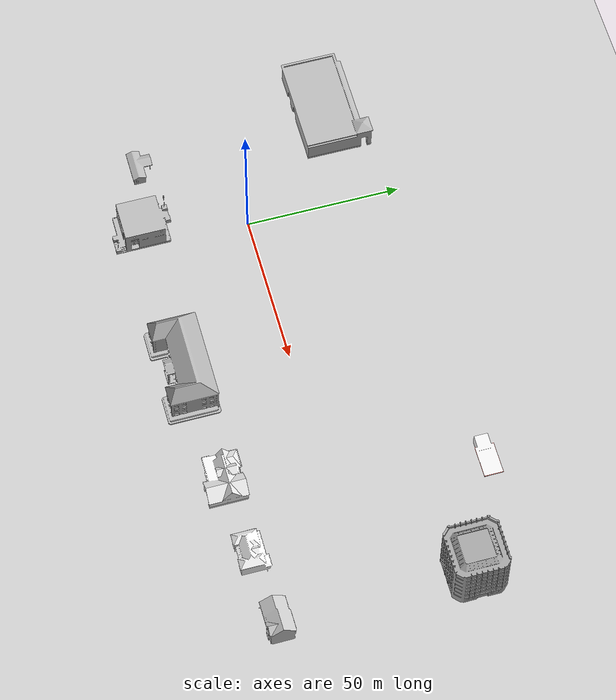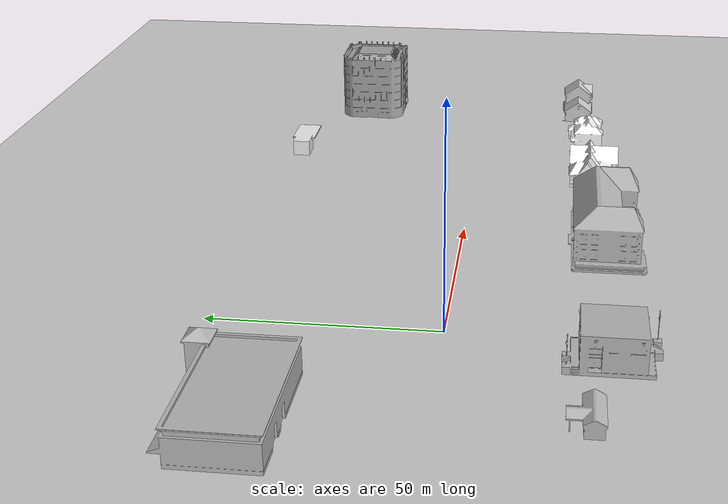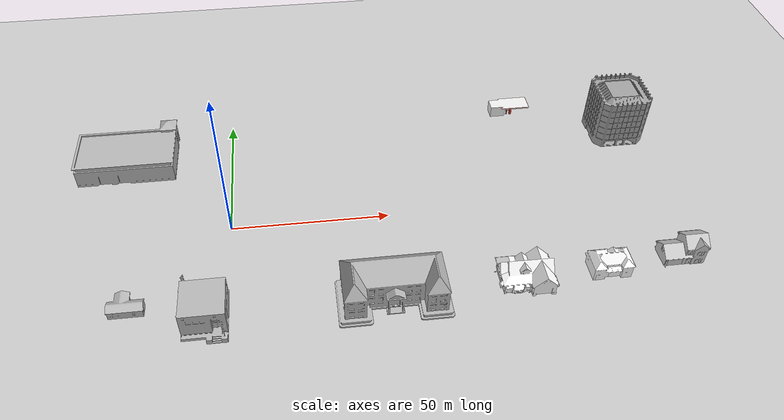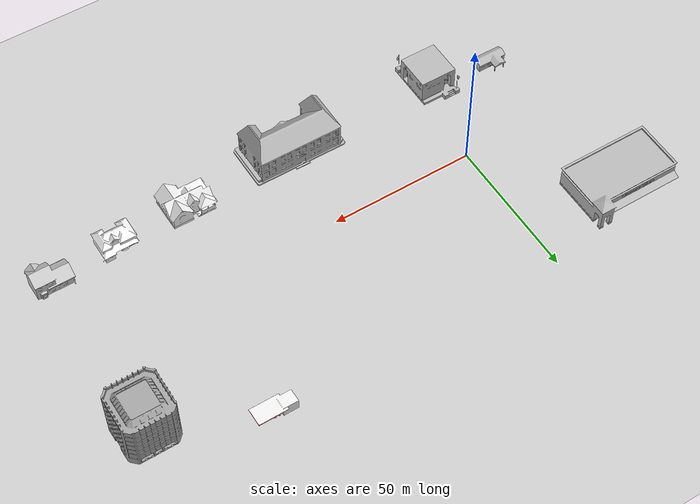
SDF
<sdf version="1.6">
 <world name="default">
  <physics name="default_physics" default="0" type="ode">
   <ode>
    <solver>
     <type>quick</type>
     <iters>100</iters>
     <sor>1</sor>
     <use_dynamic_moi_rescaling>0</use_dynamic_moi_rescaling>
    </solver>
    <constraints>
     <cfm>0</cfm>
     <erp>0.9</erp>
     <contact_max_correcting_vel>0.1</contact_max_correcting_vel>
     <contact_surface_layer>0</contact_surface_layer>
    </constraints>
   </ode>
   <real_time_update_rate>1000</real_time_update_rate>
   <max_step_size>0.001</max_step_size>
   <real_time_factor>1</real_time_factor>
  </physics>
  <scene>
   <sky><clouds><speed>12</speed></clouds></sky>
   <ambient>0.4 0.4 0.4 1</ambient>
   <background>0.25 0.25 0.25 1</background>
   <shadows>1</shadows>
  </scene>
  <model name="ground_plane">
   <static>1</static>
   <link name="link">
    <collision name="collision">
     <geometry><plane><normal>0 0 1</normal><size>5000 5000</size></plane></geometry>
     <surface><friction><ode><mu>1</mu><mu2>1</mu2></ode></friction></surface>
    </collision>
    <visual name="runway">
     <pose>0 0 0.005 0 -0 0</pose>
     <cast_shadows>0</cast_shadows>
     <geometry><plane><normal>0 0 1</normal><size>1829 45</size></plane></geometry>
     <material>
      <script><uri>file://media/materials/scripts/gazebo.material</uri><name>Gazebo/Runway</name></script>
     </material>
    </visual>
    <visual name="grass">
     <pose>0 0 -0.1 0 -0 0</pose>
     <cast_shadows>0</cast_shadows>
     <geometry><plane><normal>0 0 1</normal><size>5000 5000</size></plane></geometry>
     <material>
      <script><uri>file://media/materials/scripts/gazebo.material</uri><name>Gazebo/Grass</name></script>
     </material>
    </visual>
   </link>
  </model>
  <light name="sun" type="directional">
   <pose>0 0 10 0 -0 0</pose>
   <diffuse>0.8 0.8 0.8 1</diffuse>
   <specular>0.2 0.2 0.2 1</specular>
   <attenuation>
    <range>1000</range>
    <constant>0.9</constant>
    <linear>0.01</linear>
    <quadratic>0.001</quadratic>
   </attenuation>
   <direction>-0.5 0.1 -0.9</direction>
  </light>
  <gravity>0 0 -9.8</gravity>
  <magnetic_field>6e-06 2.3e-05 -4.2e-05</magnetic_field>
  <atmosphere type="adiabatic"/>
  <spherical_coordinates>
   <surface_model>EARTH_WGS84</surface_model>
   <latitude_deg>0</latitude_deg>
   <longitude_deg>0</longitude_deg>
   <elevation>0</elevation>
   <heading_deg>0</heading_deg>
  </spherical_coordinates>
  <model name="House 1">
   <static>1</static>
   <link name="link">
    <collision name="collision">
     <geometry><mesh><uri>model://house_1/meshes/house_1.dae</uri><scale>1.5 1.5 1.5</scale></mesh></geometry>
    </collision>
    <visual name="visual">
     <geometry><mesh><uri>model://house_1/meshes/house_1.dae</uri><scale>1.5 1.5 1.5</scale></mesh></geometry>
     <material>
      <script>
       <uri>model://house_1/materials/scripts</uri>
       <uri>model://house_1/materials/textures</uri>
       <name>House_1/Diffuse</name>
      </script>
      <shader type="normal_map_tangent_space"><normal_map>House_1_Normal.png</normal_map></shader>
     </material>
    </visual>
   </link>
   <pose>87.0973 -30.6724 -0.090902 0 -0 0</pose>
  </model>
  <model name="House 2">
   <static>1</static>
   <link name="link">
    <collision name="collision">
     <geometry><mesh><uri>model://house_2/meshes/house_2.dae</uri><scale>1.5 1.5 1.5</scale></mesh></geometry>
    </collision>
    <visual name="visual">
     <geometry><mesh><uri>model://house_2/meshes/house_2.dae</uri><scale>1.5 1.5 1.5</scale></mesh></geometry>
     <material>
      <script>
       <uri>model://house_2/materials/scripts</uri>
       <uri>model://house_2/materials/textures</uri>
       <uri>model://house_1/materials/textures</uri>
       <name>House_2/Diffuse</name>
      </script>
      <shader type="normal_map_tangent_space">
       <normal_map>model://house_1/materials/textures/House_1_Normal.png</normal_map>
      </shader>
     </material>
    </visual>
   </link>
   <pose>111.758 -29.8814 -0.061015 0 -0 0</pose>
  </model>
  <model name="House 3">
   <static>1</static>
   <link name="link">
    <collision name="collision">
     <geometry><mesh><uri>model://house_3/meshes/house_3.dae</uri><scale>1.5 1.5 1.5</scale></mesh></geometry>
    </collision>
    <visual name="visual">
     <geometry><mesh><uri>model://house_3/meshes/house_3.dae</uri><scale>1.5 1.5 1.5</scale></mesh></geometry>
     <material>
      <script>
       <uri>model://house_3/materials/scripts</uri>
       <uri>model://house_3/materials/textures</uri>
       <uri>model://house_1/materials/textures</uri>
       <name>House_3/Diffuse</name>
      </script>
      <shader type="normal_map_tangent_space">
       <normal_map>model://house_1/materials/textures/House_1_Normal.png</normal_map>
      </shader>
     </material>
    </visual>
   </link>
   <pose>135.652 -27.2021 -0.07909 0 0 -3.13653</pose>
  </model>
  <model name="school">
   <static>1</static>
   <link name="link">
    <collision name="collision">
     <geometry><mesh><uri>model://school/meshes/school.dae</uri></mesh></geometry>
    </collision>
    <visual name="visual"><geometry><mesh><uri>model://school/meshes/school.dae</uri></mesh></geometry></visual>
   </link>
   <pose>47.0681 -31.1525 -0.076698 0 -0 0</pose>
  </model>
  <model name="police_station">
   <static>1</static>
   <link name="link">
    <collision name="collision_main">
     <pose>0 0 4.28998 0 -0 0</pose>
     <geometry><box><size>13.037 13.037 8.57995</size></box></geometry>
    </collision>
    <collision name="collision_landing">
     <pose>0 0 0.464086 0 -0 0</pose>
     <geometry><box><size>13.037 16.2446 0.928173</size></box></geometry>
    </collision>
    <visual name="visual">
     <geometry><mesh><uri>model://police_station/meshes/police_station.dae</uri></mesh></geometry>
    </visual>
   </link>
   <pose>-6.90238 -33.4925 -0.070231 0 -0 0</pose>
  </model>
  <model name="post_office">
   <static>1</static>
   <link name="link">
    <collision name="collision">
     <geometry><mesh><uri>model://post_office/meshes/post_office.dae</uri></mesh></geometry>
    </collision>
    <visual name="visual">
     <geometry><mesh><uri>model://post_office/meshes/post_office.dae</uri></mesh></geometry>
    </visual>
   </link>
   <pose>-29.4103 -29.6444 -0.099768 0 -0 0</pose>
  </model>
  <model name="grocery_store">
   <static>1</static>
   <link name="link">
    <collision name="collision">
     <pose>0 0 4.04605 0 -0 0</pose>
     <geometry><box><size>32.1985 17.5425 8.09209</size></box></geometry>
    </collision>
    <visual name="visual">
     <pose>0 -1.96155 0 0 -0 0</pose>
     <geometry><mesh><uri>model://grocery_store/meshes/grocery_store.dae</uri></mesh></geometry>
    </visual>
   </link>
   <pose>-35.1445 34.1164 -0.142918 0 -0 0</pose>
  </model>
  <model name="Gas Station">
   <static>1</static>
   <link name="link">
    <collision name="collision">
     <geometry><mesh><uri>model://gas_station/meshes/gas_station.dae</uri></mesh></geometry>
    </collision>
    <visual name="visual">
     <geometry><mesh><uri>model://gas_station/meshes/gas_station.dae</uri></mesh></geometry>
     <material>
      <script>
       <uri>model://gas_station/materials/scripts</uri>
       <uri>model://gas_station/materials/textures</uri>
       <name>GasStation/Diffuse</name>
      </script>
      <shader type="normal_map_tangent_space"><normal_map>GasStation_Normal.png</normal_map></shader>
     </material>
    </visual>
   </link>
   <pose>100.573 48.7465 -0.159105 0 -0 0</pose>
  </model>
  <model name="Office Building">
   <static>1</static>
   <link name="link">
    <collision name="collision">
     <geometry><mesh><uri>model://office_building/meshes/office_building.dae</uri></mesh></geometry>
    </collision>
    <visual name="visual">
     <geometry><mesh><uri>model://office_building/meshes/office_building.dae</uri></mesh></geometry>
    </visual>
   </link>
   <pose>135.818 33.8641 -0.17907 0 -0 0</pose>
  </model>
 </world>
</sdf>
